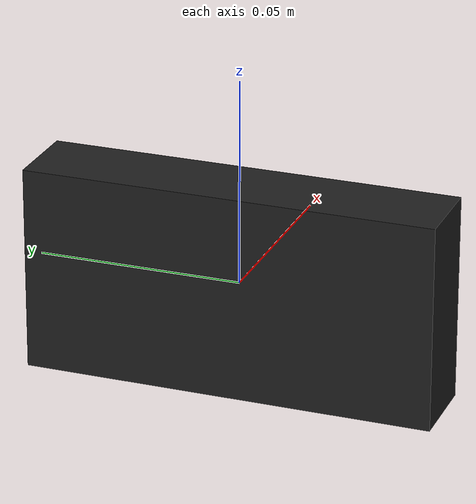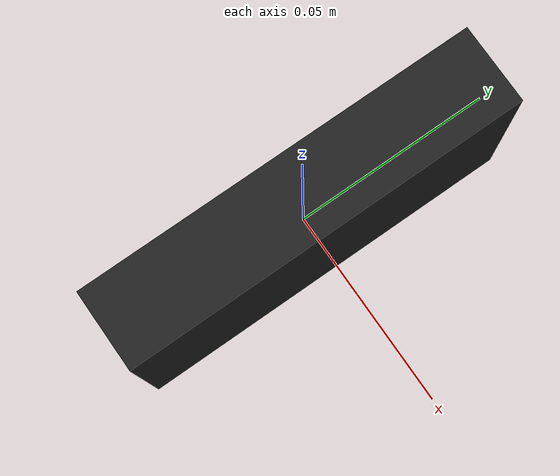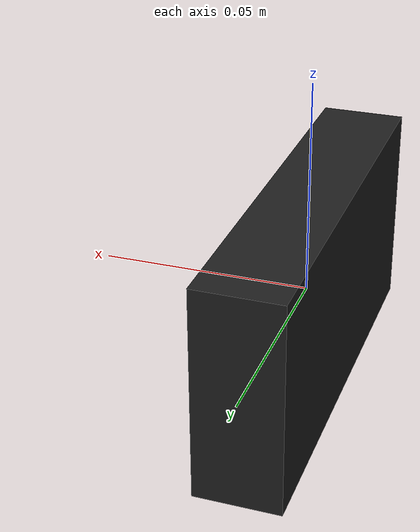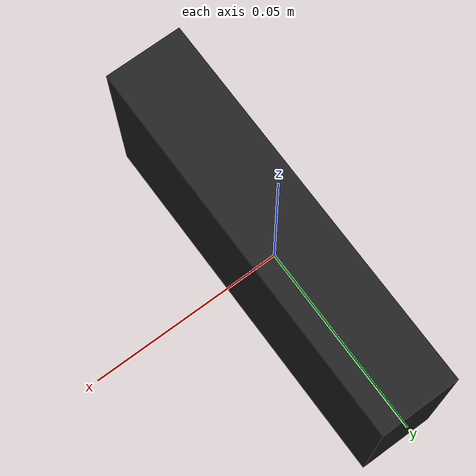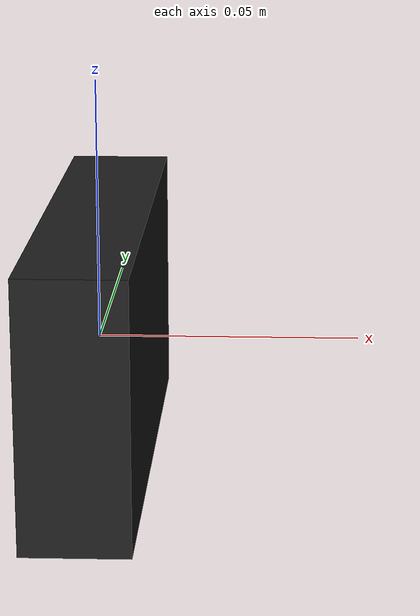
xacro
<?xml version="1.0"?>
<robot xmlns:xacro="http://www.ros.org/wiki/xacro">
    <link name="camera_link" >
        <visual>
            <geometry>
                <box size="0.02 0.10 0.05"/>
            </geometry>
            <origin xyz="0.0 0.0 0.0" rpy="0.0 0.0 0.0" />
            <material name="black" />
        </visual>

        <collision>
            <geometry>
                <box size="0.02 0.10 0.05"/>
            </geometry>
            <origin xyz="0.0 0.0 0.0" rpy="0.0 0.0 0.0" />
        </collision>

        <inertial>
            <mass value="0.10" />
            <inertia ixx="0.0000867" ixy="0.0" ixz="0.0" iyy="0.0000242" iyz="0.0" izz="0.0001042" />
            <origin xyz="0 0 0.01" />
        </inertial>
    </link>

    <link name="camera_optical_link" >    </link>

    <joint name="camera_optical_joint" type="fixed">
        <parent link="camera_link" />
        <child link="camera_optical_link" />
        <origin xyz="0 0 0" rpy="${-pi/2} 0.0 ${pi/2}" />
    </joint>
</robot>
